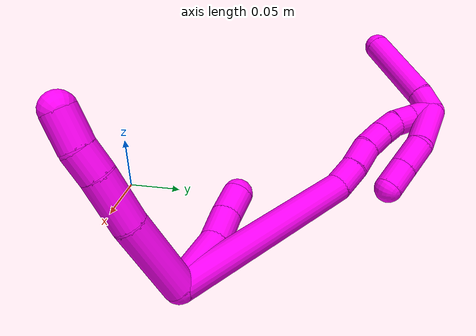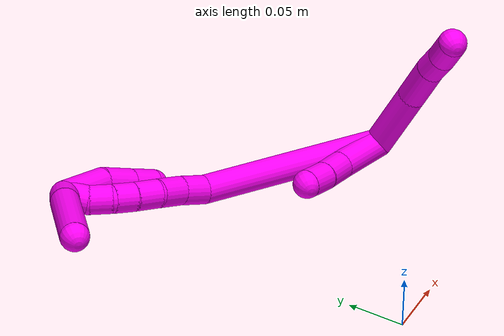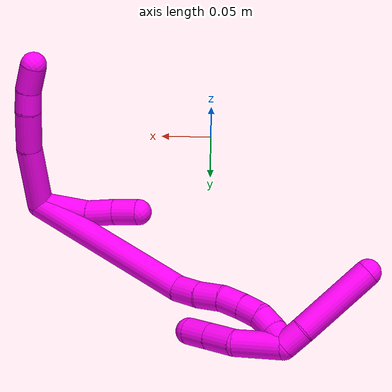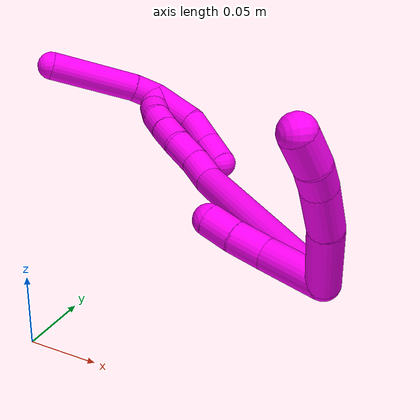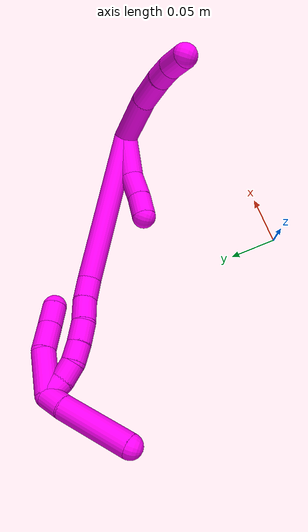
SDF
<sdf version="1.7">
 <world name="default">
  <model name="10">
   <static>0</static>
   <link name="10">
    <collision name="collision-cylinder-e_1_2_8">
     <pose>0.001923 -0.030748 -0.007248 1.80228 0.060803 0.076787</pose>
     <geometry><cylinder><radius>0.0125</radius><length>0.063299</length></cylinder></geometry>
     <surface>
      <friction><ode><mu>1.16</mu><mu2>1.16</mu2><slip1>0</slip1><slip2>0</slip2></ode></friction>
      <contact><ode><kp>1e+06</kp><kd>1</kd><max_vel>0</max_vel><min_depth>0.001</min_depth></ode></contact>
     </surface>
    </collision>
    <visual name="visual-cylinder-e_1_2_8">
     <pose>0.001923 -0.030748 -0.007248 1.80228 0.060803 0.076787</pose>
     <geometry><cylinder><radius>0.0125</radius><length>0.063299</length></cylinder></geometry>
     <material><ambient>1 0 0.964706 1</ambient></material>
    </visual>
    <collision name="collision-cylinder-e_2_8_9">
     <pose>0.003138 -0.080011 -0.021054 1.91126 -0.03603 -0.050982</pose>
     <geometry><cylinder><radius>0.0125</radius><length>0.039309</length></cylinder></geometry>
     <surface>
      <friction><ode><mu>1.16</mu><mu2>1.16</mu2><slip1>0</slip1><slip2>0</slip2></ode></friction>
      <contact><ode><kp>1e+06</kp><kd>1</kd><max_vel>0</max_vel><min_depth>0.001</min_depth></ode></contact>
     </surface>
    </collision>
    <visual name="visual-cylinder-e_2_8_9">
     <pose>0.003138 -0.080011 -0.021054 1.91126 -0.03603 -0.050982</pose>
     <geometry><cylinder><radius>0.0125</radius><length>0.039309</length></cylinder></geometry>
     <material><ambient>1 0 0.964706 1</ambient></material>
    </visual>
    <collision name="collision-cylinder-e_3_9_10">
     <pose>0.002636 -0.108078 -0.031995 2.00084 0.019524 0.030433</pose>
     <geometry><cylinder><radius>0.0125</radius><length>0.021023</length></cylinder></geometry>
     <surface>
      <friction><ode><mu>1.16</mu><mu2>1.16</mu2><slip1>0</slip1><slip2>0</slip2></ode></friction>
      <contact><ode><kp>1e+06</kp><kd>1</kd><max_vel>0</max_vel><min_depth>0.001</min_depth></ode></contact>
     </surface>
    </collision>
    <visual name="visual-cylinder-e_3_9_10">
     <pose>0.002636 -0.108078 -0.031995 2.00084 0.019524 0.030433</pose>
     <geometry><cylinder><radius>0.0125</radius><length>0.021023</length></cylinder></geometry>
     <material><ambient>1 0 0.964706 1</ambient></material>
    </visual>
    <collision name="collision-cylinder-e_4_10_6">
     <pose>0.000761 -0.128987 -0.042744 2.08181 -0.158393 -0.269327</pose>
     <geometry><cylinder><radius>0.0125</radius><length>0.026369</length></cylinder></geometry>
     <surface>
      <friction><ode><mu>1.16</mu><mu2>1.16</mu2><slip1>0</slip1><slip2>0</slip2></ode></friction>
      <contact><ode><kp>1e+06</kp><kd>1</kd><max_vel>0</max_vel><min_depth>0.001</min_depth></ode></contact>
     </surface>
    </collision>
    <visual name="visual-cylinder-e_4_10_6">
     <pose>0.000761 -0.128987 -0.042744 2.08181 -0.158393 -0.269327</pose>
     <geometry><cylinder><radius>0.0125</radius><length>0.026369</length></cylinder></geometry>
     <material><ambient>1 0 0.964706 1</ambient></material>
    </visual>
    <collision name="collision-cylinder-e_1_2_11">
     <pose>-0.020856 0.005338 -0.011556 -2.70885 -1.02282 2.39497</pose>
     <geometry><cylinder><radius>0.0125</radius><length>0.048868</length></cylinder></geometry>
     <surface>
      <friction><ode><mu>1.16</mu><mu2>1.16</mu2><slip1>0</slip1><slip2>0</slip2></ode></friction>
      <contact><ode><kp>1e+06</kp><kd>1</kd><max_vel>0</max_vel><min_depth>0.001</min_depth></ode></contact>
     </surface>
    </collision>
    <visual name="visual-cylinder-e_1_2_11">
     <pose>-0.020856 0.005338 -0.011556 -2.70885 -1.02282 2.39497</pose>
     <geometry><cylinder><radius>0.0125</radius><length>0.048868</length></cylinder></geometry>
     <material><ambient>1 0 0.964706 1</ambient></material>
    </visual>
    <collision name="collision-cylinder-e_2_11_12">
     <pose>-0.052483 0.011253 -0.03122 -3.07062 -0.924248 2.99928</pose>
     <geometry><cylinder><radius>0.0125</radius><length>0.026988</length></cylinder></geometry>
     <surface>
      <friction><ode><mu>1.16</mu><mu2>1.16</mu2><slip1>0</slip1><slip2>0</slip2></ode></friction>
      <contact><ode><kp>1e+06</kp><kd>1</kd><max_vel>0</max_vel><min_depth>0.001</min_depth></ode></contact>
     </surface>
    </collision>
    <visual name="visual-cylinder-e_2_11_12">
     <pose>-0.052483 0.011253 -0.03122 -3.07062 -0.924248 2.99928</pose>
     <geometry><cylinder><radius>0.0125</radius><length>0.026988</length></cylinder></geometry>
     <material><ambient>1 0 0.964706 1</ambient></material>
    </visual>
    <collision name="collision-cylinder-e_3_12_5">
     <pose>-0.073527 0.012193 -0.045658 -3.08423 -1.01792 3.03885</pose>
     <geometry><cylinder><radius>0.0125</radius><length>0.024145</length></cylinder></geometry>
     <surface>
      <friction><ode><mu>1.16</mu><mu2>1.16</mu2><slip1>0</slip1><slip2>0</slip2></ode></friction>
      <contact><ode><kp>1e+06</kp><kd>1</kd><max_vel>0</max_vel><min_depth>0.001</min_depth></ode></contact>
     </surface>
    </collision>
    <visual name="visual-cylinder-e_3_12_5">
     <pose>-0.073527 0.012193 -0.045658 -3.08423 -1.01792 3.03885</pose>
     <geometry><cylinder><radius>0.0125</radius><length>0.024145</length></cylinder></geometry>
     <material><ambient>1 0 0.964706 1</ambient></material>
    </visual>
    <collision name="collision-cylinder-e_1_2_13">
     <pose>-0.079172 0.024267 -0.010324 -1.97305 -1.24926 1.65702</pose>
     <geometry><cylinder><radius>0.0125</radius><length>0.166897</length></cylinder></geometry>
     <surface>
      <friction><ode><mu>1.16</mu><mu2>1.16</mu2><slip1>0</slip1><slip2>0</slip2></ode></friction>
      <contact><ode><kp>1e+06</kp><kd>1</kd><max_vel>0</max_vel><min_depth>0.001</min_depth></ode></contact>
     </surface>
    </collision>
    <visual name="visual-cylinder-e_1_2_13">
     <pose>-0.079172 0.024267 -0.010324 -1.97305 -1.24926 1.65702</pose>
     <geometry><cylinder><radius>0.0125</radius><length>0.166897</length></cylinder></geometry>
     <material><ambient>1 0 0.964706 1</ambient></material>
    </visual>
    <collision name="collision-cylinder-e_2_13_14">
     <pose>-0.170596 0.048251 -0.023075 3.02557 -1.37405 -3.00024</pose>
     <geometry><cylinder><radius>0.0125</radius><length>0.024987</length></cylinder></geometry>
     <surface>
      <friction><ode><mu>1.16</mu><mu2>1.16</mu2><slip1>0</slip1><slip2>0</slip2></ode></friction>
      <contact><ode><kp>1e+06</kp><kd>1</kd><max_vel>0</max_vel><min_depth>0.001</min_depth></ode></contact>
     </surface>
    </collision>
    <visual name="visual-cylinder-e_2_13_14">
     <pose>-0.170596 0.048251 -0.023075 3.02557 -1.37405 -3.00024</pose>
     <geometry><cylinder><radius>0.0125</radius><length>0.024987</length></cylinder></geometry>
     <material><ambient>1 0 0.964706 1</ambient></material>
    </visual>
    <collision name="collision-cylinder-e_3_14_15">
     <pose>-0.194709 0.047331 -0.029599 2.98719 -1.23435 -2.92444</pose>
     <geometry><cylinder><radius>0.0125</radius><length>0.025128</length></cylinder></geometry>
     <surface>
      <friction><ode><mu>1.16</mu><mu2>1.16</mu2><slip1>0</slip1><slip2>0</slip2></ode></friction>
      <contact><ode><kp>1e+06</kp><kd>1</kd><max_vel>0</max_vel><min_depth>0.001</min_depth></ode></contact>
     </surface>
    </collision>
    <visual name="visual-cylinder-e_3_14_15">
     <pose>-0.194709 0.047331 -0.029599 2.98719 -1.23435 -2.92444</pose>
     <geometry><cylinder><radius>0.0125</radius><length>0.025128</length></cylinder></geometry>
     <material><ambient>1 0 0.964706 1</ambient></material>
    </visual>
    <collision name="collision-cylinder-e_4_15_16">
     <pose>-0.217753 0.047867 -0.035667 -2.60393 -1.3686 2.49024</pose>
     <geometry><cylinder><radius>0.0125</radius><length>0.022834</length></cylinder></geometry>
     <surface>
      <friction><ode><mu>1.16</mu><mu2>1.16</mu2><slip1>0</slip1><slip2>0</slip2></ode></friction>
      <contact><ode><kp>1e+06</kp><kd>1</kd><max_vel>0</max_vel><min_depth>0.001</min_depth></ode></contact>
     </surface>
    </collision>
    <visual name="visual-cylinder-e_4_15_16">
     <pose>-0.217753 0.047867 -0.035667 -2.60393 -1.3686 2.49024</pose>
     <geometry><cylinder><radius>0.0125</radius><length>0.022834</length></cylinder></geometry>
     <material><ambient>1 0 0.964706 1</ambient></material>
    </visual>
    <collision name="collision-cylinder-e_5_16_17">
     <pose>-0.238865 0.050223 -0.038571 -2.23978 -1.42016 2.11573</pose>
     <geometry><cylinder><radius>0.0125</radius><length>0.020083</length></cylinder></geometry>
     <surface>
      <friction><ode><mu>1.16</mu><mu2>1.16</mu2><slip1>0</slip1><slip2>0</slip2></ode></friction>
      <contact><ode><kp>1e+06</kp><kd>1</kd><max_vel>0</max_vel><min_depth>0.001</min_depth></ode></contact>
     </surface>
    </collision>
    <visual name="visual-cylinder-e_5_16_17">
     <pose>-0.238865 0.050223 -0.038571 -2.23978 -1.42016 2.11573</pose>
     <geometry><cylinder><radius>0.0125</radius><length>0.020083</length></cylinder></geometry>
     <material><ambient>1 0 0.964706 1</ambient></material>
    </visual>
    <collision name="collision-cylinder-e_6_17_18">
     <pose>-0.258281 0.054125 -0.037776 -1.00435 -1.24333 0.749623</pose>
     <geometry><cylinder><radius>0.0125</radius><length>0.020041</length></cylinder></geometry>
     <surface>
      <friction><ode><mu>1.16</mu><mu2>1.16</mu2><slip1>0</slip1><slip2>0</slip2></ode></friction>
      <contact><ode><kp>1e+06</kp><kd>1</kd><max_vel>0</max_vel><min_depth>0.001</min_depth></ode></contact>
     </surface>
    </collision>
    <visual name="visual-cylinder-e_6_17_18">
     <pose>-0.258281 0.054125 -0.037776 -1.00435 -1.24333 0.749623</pose>
     <geometry><cylinder><radius>0.0125</radius><length>0.020041</length></cylinder></geometry>
     <material><ambient>1 0 0.964706 1</ambient></material>
    </visual>
    <collision name="collision-cylinder-e_7_18_1">
     <pose>-0.276945 0.057955 -0.032191 -0.280395 -1.15862 0.184119</pose>
     <geometry><cylinder><radius>0.0125</radius><length>0.02003</length></cylinder></geometry>
     <surface>
      <friction><ode><mu>1.16</mu><mu2>1.16</mu2><slip1>0</slip1><slip2>0</slip2></ode></friction>
      <contact><ode><kp>1e+06</kp><kd>1</kd><max_vel>0</max_vel><min_depth>0.001</min_depth></ode></contact>
     </surface>
    </collision>
    <visual name="visual-cylinder-e_7_18_1">
     <pose>-0.276945 0.057955 -0.032191 -0.280395 -1.15862 0.184119</pose>
     <geometry><cylinder><radius>0.0125</radius><length>0.02003</length></cylinder></geometry>
     <material><ambient>1 0 0.964706 1</ambient></material>
    </visual>
    <collision name="collision-cylinder-e_1_1_19">
     <pose>-0.265695 0.058718 -0.017355 0.031643 1.07733 0.018911</pose>
     <geometry><cylinder><radius>0.0125</radius><length>0.046385</length></cylinder></geometry>
     <surface>
      <friction><ode><mu>1.16</mu><mu2>1.16</mu2><slip1>0</slip1><slip2>0</slip2></ode></friction>
      <contact><ode><kp>1e+06</kp><kd>1</kd><max_vel>0</max_vel><min_depth>0.001</min_depth></ode></contact>
     </surface>
    </collision>
    <visual name="visual-cylinder-e_1_1_19">
     <pose>-0.265695 0.058718 -0.017355 0.031643 1.07733 0.018911</pose>
     <geometry><cylinder><radius>0.0125</radius><length>0.046385</length></cylinder></geometry>
     <material><ambient>1 0 0.964706 1</ambient></material>
    </visual>
    <collision name="collision-cylinder-e_2_19_20">
     <pose>-0.231193 0.059921 -0.003643 -0.516445 1.35121 -0.41718</pose>
     <geometry><cylinder><radius>0.0125</radius><length>0.028847</length></cylinder></geometry>
     <surface>
      <friction><ode><mu>1.16</mu><mu2>1.16</mu2><slip1>0</slip1><slip2>0</slip2></ode></friction>
      <contact><ode><kp>1e+06</kp><kd>1</kd><max_vel>0</max_vel><min_depth>0.001</min_depth></ode></contact>
     </surface>
    </collision>
    <visual name="visual-cylinder-e_2_19_20">
     <pose>-0.231193 0.059921 -0.003643 -0.516445 1.35121 -0.41718</pose>
     <geometry><cylinder><radius>0.0125</radius><length>0.028847</length></cylinder></geometry>
     <material><ambient>1 0 0.964706 1</ambient></material>
    </visual>
    <collision name="collision-cylinder-e_3_20_4">
     <pose>-0.205041 0.06276 0.001523 -0.486572 1.34664 -0.390913</pose>
     <geometry><cylinder><radius>0.0125</radius><length>0.024768</length></cylinder></geometry>
     <surface>
      <friction><ode><mu>1.16</mu><mu2>1.16</mu2><slip1>0</slip1><slip2>0</slip2></ode></friction>
      <contact><ode><kp>1e+06</kp><kd>1</kd><max_vel>0</max_vel><min_depth>0.001</min_depth></ode></contact>
     </surface>
    </collision>
    <visual name="visual-cylinder-e_3_20_4">
     <pose>-0.205041 0.06276 0.001523 -0.486572 1.34664 -0.390913</pose>
     <geometry><cylinder><radius>0.0125</radius><length>0.024768</length></cylinder></geometry>
     <material><ambient>1 0 0.964706 1</ambient></material>
    </visual>
    <collision name="collision-cylinder-e_1_1_21">
     <pose>-0.289927 0.055355 -0.038154 2.78032 -0.347901 -1.53229</pose>
     <geometry><cylinder><radius>0.0125</radius><length>0.022329</length></cylinder></geometry>
     <surface>
      <friction><ode><mu>1.16</mu><mu2>1.16</mu2><slip1>0</slip1><slip2>0</slip2></ode></friction>
      <contact><ode><kp>1e+06</kp><kd>1</kd><max_vel>0</max_vel><min_depth>0.001</min_depth></ode></contact>
     </surface>
    </collision>
    <visual name="visual-cylinder-e_1_1_21">
     <pose>-0.289927 0.055355 -0.038154 2.78032 -0.347901 -1.53229</pose>
     <geometry><cylinder><radius>0.0125</radius><length>0.022329</length></cylinder></geometry>
     <material><ambient>1 0 0.964706 1</ambient></material>
    </visual>
    <collision name="collision-cylinder-e_2_21_3">
     <pose>-0.303081 0.041975 -0.084404 2.88214 -0.243101 -1.50504</pose>
     <geometry><cylinder><radius>0.0125</radius><length>0.077671</length></cylinder></geometry>
     <surface>
      <friction><ode><mu>1.16</mu><mu2>1.16</mu2><slip1>0</slip1><slip2>0</slip2></ode></friction>
      <contact><ode><kp>1e+06</kp><kd>1</kd><max_vel>0</max_vel><min_depth>0.001</min_depth></ode></contact>
     </surface>
    </collision>
    <visual name="visual-cylinder-e_2_21_3">
     <pose>-0.303081 0.041975 -0.084404 2.88214 -0.243101 -1.50504</pose>
     <geometry><cylinder><radius>0.0125</radius><length>0.077671</length></cylinder></geometry>
     <material><ambient>1 0 0.964706 1</ambient></material>
    </visual>
    <collision name="collision-sphere-3">
     <pose>-0.31243 0.032305 -0.120836 0 -0 0</pose>
     <geometry><sphere><radius>0.0125</radius></sphere></geometry>
     <surface>
      <friction><ode><mu>1.16</mu><mu2>1.16</mu2><slip1>0</slip1><slip2>0</slip2></ode></friction>
      <contact><ode><kp>1e+06</kp><kd>1</kd><max_vel>0</max_vel><min_depth>0.001</min_depth></ode></contact>
     </surface>
    </collision>
    <visual name="visual-sphere-3">
     <pose>-0.31243 0.032305 -0.120836 0 -0 0</pose>
     <geometry><sphere><radius>0.0125</radius></sphere></geometry>
     <material><ambient>1 0 0.964706 1</ambient></material>
    </visual>
    <collision name="collision-sphere-21">
     <pose>-0.293733 0.051646 -0.047972 0 -0 0</pose>
     <geometry><sphere><radius>0.0125</radius></sphere></geometry>
     <surface>
      <friction><ode><mu>1.16</mu><mu2>1.16</mu2><slip1>0</slip1><slip2>0</slip2></ode></friction>
      <contact><ode><kp>1e+06</kp><kd>1</kd><max_vel>0</max_vel><min_depth>0.001</min_depth></ode></contact>
     </surface>
    </collision>
    <visual name="visual-sphere-21">
     <pose>-0.293733 0.051646 -0.047972 0 -0 0</pose>
     <geometry><sphere><radius>0.0125</radius></sphere></geometry>
     <material><ambient>1 0 0.964706 1</ambient></material>
    </visual>
    <collision name="collision-sphere-4">
     <pose>-0.192967 0.064047 0.003956 0 -0 0</pose>
     <geometry><sphere><radius>0.0125</radius></sphere></geometry>
     <surface>
      <friction><ode><mu>1.16</mu><mu2>1.16</mu2><slip1>0</slip1><slip2>0</slip2></ode></friction>
      <contact><ode><kp>1e+06</kp><kd>1</kd><max_vel>0</max_vel><min_depth>0.001</min_depth></ode></contact>
     </surface>
    </collision>
    <visual name="visual-sphere-4">
     <pose>-0.192967 0.064047 0.003956 0 -0 0</pose>
     <geometry><sphere><radius>0.0125</radius></sphere></geometry>
     <material><ambient>1 0 0.964706 1</ambient></material>
    </visual>
    <collision name="collision-sphere-20">
     <pose>-0.217116 0.061473 -0.000911 0 -0 0</pose>
     <geometry><sphere><radius>0.0125</radius></sphere></geometry>
     <surface>
      <friction><ode><mu>1.16</mu><mu2>1.16</mu2><slip1>0</slip1><slip2>0</slip2></ode></friction>
      <contact><ode><kp>1e+06</kp><kd>1</kd><max_vel>0</max_vel><min_depth>0.001</min_depth></ode></contact>
     </surface>
    </collision>
    <visual name="visual-sphere-20">
     <pose>-0.217116 0.061473 -0.000911 0 -0 0</pose>
     <geometry><sphere><radius>0.0125</radius></sphere></geometry>
     <material><ambient>1 0 0.964706 1</ambient></material>
    </visual>
    <collision name="collision-sphere-11">
     <pose>-0.041712 0.010676 -0.023111 0 -0 0</pose>
     <geometry><sphere><radius>0.0125</radius></sphere></geometry>
     <surface>
      <friction><ode><mu>1.16</mu><mu2>1.16</mu2><slip1>0</slip1><slip2>0</slip2></ode></friction>
      <contact><ode><kp>1e+06</kp><kd>1</kd><max_vel>0</max_vel><min_depth>0.001</min_depth></ode></contact>
     </surface>
    </collision>
    <visual name="visual-sphere-11">
     <pose>-0.041712 0.010676 -0.023111 0 -0 0</pose>
     <geometry><sphere><radius>0.0125</radius></sphere></geometry>
     <material><ambient>1 0 0.964706 1</ambient></material>
    </visual>
    <collision name="collision-sphere-6">
     <pose>-0.001318 -0.140343 -0.049111 0 -0 0</pose>
     <geometry><sphere><radius>0.0125</radius></sphere></geometry>
     <surface>
      <friction><ode><mu>1.16</mu><mu2>1.16</mu2><slip1>0</slip1><slip2>0</slip2></ode></friction>
      <contact><ode><kp>1e+06</kp><kd>1</kd><max_vel>0</max_vel><min_depth>0.001</min_depth></ode></contact>
     </surface>
    </collision>
    <visual name="visual-sphere-6">
     <pose>-0.001318 -0.140343 -0.049111 0 -0 0</pose>
     <geometry><sphere><radius>0.0125</radius></sphere></geometry>
     <material><ambient>1 0 0.964706 1</ambient></material>
    </visual>
    <collision name="collision-sphere-10">
     <pose>0.002841 -0.11763 -0.036376 0 -0 0</pose>
     <geometry><sphere><radius>0.0125</radius></sphere></geometry>
     <surface>
      <friction><ode><mu>1.16</mu><mu2>1.16</mu2><slip1>0</slip1><slip2>0</slip2></ode></friction>
      <contact><ode><kp>1e+06</kp><kd>1</kd><max_vel>0</max_vel><min_depth>0.001</min_depth></ode></contact>
     </surface>
    </collision>
    <visual name="visual-sphere-10">
     <pose>0.002841 -0.11763 -0.036376 0 -0 0</pose>
     <geometry><sphere><radius>0.0125</radius></sphere></geometry>
     <material><ambient>1 0 0.964706 1</ambient></material>
    </visual>
    <collision name="collision-sphere-9">
     <pose>0.00243 -0.098525 -0.027613 0 -0 0</pose>
     <geometry><sphere><radius>0.0125</radius></sphere></geometry>
     <surface>
      <friction><ode><mu>1.16</mu><mu2>1.16</mu2><slip1>0</slip1><slip2>0</slip2></ode></friction>
      <contact><ode><kp>1e+06</kp><kd>1</kd><max_vel>0</max_vel><min_depth>0.001</min_depth></ode></contact>
     </surface>
    </collision>
    <visual name="visual-sphere-9">
     <pose>0.00243 -0.098525 -0.027613 0 -0 0</pose>
     <geometry><sphere><radius>0.0125</radius></sphere></geometry>
     <material><ambient>1 0 0.964706 1</ambient></material>
    </visual>
    <collision name="collision-sphere-2">
     <geometry><sphere><radius>0.0125</radius></sphere></geometry>
     <surface>
      <friction><ode><mu>1.16</mu><mu2>1.16</mu2><slip1>0</slip1><slip2>0</slip2></ode></friction>
      <contact><ode><kp>1e+06</kp><kd>1</kd><max_vel>0</max_vel><min_depth>0.001</min_depth></ode></contact>
     </surface>
    </collision>
    <visual name="visual-sphere-2">
     <geometry><sphere><radius>0.0125</radius></sphere></geometry>
     <material><ambient>1 0 0.964706 1</ambient></material>
    </visual>
    <collision name="collision-sphere-19">
     <pose>-0.24527 0.05837 -0.006375 0 -0 0</pose>
     <geometry><sphere><radius>0.0125</radius></sphere></geometry>
     <surface>
      <friction><ode><mu>1.16</mu><mu2>1.16</mu2><slip1>0</slip1><slip2>0</slip2></ode></friction>
      <contact><ode><kp>1e+06</kp><kd>1</kd><max_vel>0</max_vel><min_depth>0.001</min_depth></ode></contact>
     </surface>
    </collision>
    <visual name="visual-sphere-19">
     <pose>-0.24527 0.05837 -0.006375 0 -0 0</pose>
     <geometry><sphere><radius>0.0125</radius></sphere></geometry>
     <material><ambient>1 0 0.964706 1</ambient></material>
    </visual>
    <collision name="collision-sphere-8">
     <pose>0.003846 -0.061496 -0.014496 0 -0 0</pose>
     <geometry><sphere><radius>0.0125</radius></sphere></geometry>
     <surface>
      <friction><ode><mu>1.16</mu><mu2>1.16</mu2><slip1>0</slip1><slip2>0</slip2></ode></friction>
      <contact><ode><kp>1e+06</kp><kd>1</kd><max_vel>0</max_vel><min_depth>0.001</min_depth></ode></contact>
     </surface>
    </collision>
    <visual name="visual-sphere-8">
     <pose>0.003846 -0.061496 -0.014496 0 -0 0</pose>
     <geometry><sphere><radius>0.0125</radius></sphere></geometry>
     <material><ambient>1 0 0.964706 1</ambient></material>
    </visual>
    <collision name="collision-sphere-12">
     <pose>-0.063253 0.011829 -0.039329 0 -0 0</pose>
     <geometry><sphere><radius>0.0125</radius></sphere></geometry>
     <surface>
      <friction><ode><mu>1.16</mu><mu2>1.16</mu2><slip1>0</slip1><slip2>0</slip2></ode></friction>
      <contact><ode><kp>1e+06</kp><kd>1</kd><max_vel>0</max_vel><min_depth>0.001</min_depth></ode></contact>
     </surface>
    </collision>
    <visual name="visual-sphere-12">
     <pose>-0.063253 0.011829 -0.039329 0 -0 0</pose>
     <geometry><sphere><radius>0.0125</radius></sphere></geometry>
     <material><ambient>1 0 0.964706 1</ambient></material>
    </visual>
    <collision name="collision-sphere-5">
     <pose>-0.083801 0.012556 -0.051987 0 -0 0</pose>
     <geometry><sphere><radius>0.0125</radius></sphere></geometry>
     <surface>
      <friction><ode><mu>1.16</mu><mu2>1.16</mu2><slip1>0</slip1><slip2>0</slip2></ode></friction>
      <contact><ode><kp>1e+06</kp><kd>1</kd><max_vel>0</max_vel><min_depth>0.001</min_depth></ode></contact>
     </surface>
    </collision>
    <visual name="visual-sphere-5">
     <pose>-0.083801 0.012556 -0.051987 0 -0 0</pose>
     <geometry><sphere><radius>0.0125</radius></sphere></geometry>
     <material><ambient>1 0 0.964706 1</ambient></material>
    </visual>
    <collision name="collision-sphere-13">
     <pose>-0.158344 0.048534 -0.020649 0 -0 0</pose>
     <geometry><sphere><radius>0.0125</radius></sphere></geometry>
     <surface>
      <friction><ode><mu>1.16</mu><mu2>1.16</mu2><slip1>0</slip1><slip2>0</slip2></ode></friction>
      <contact><ode><kp>1e+06</kp><kd>1</kd><max_vel>0</max_vel><min_depth>0.001</min_depth></ode></contact>
     </surface>
    </collision>
    <visual name="visual-sphere-13">
     <pose>-0.158344 0.048534 -0.020649 0 -0 0</pose>
     <geometry><sphere><radius>0.0125</radius></sphere></geometry>
     <material><ambient>1 0 0.964706 1</ambient></material>
    </visual>
    <collision name="collision-sphere-14">
     <pose>-0.182849 0.047969 -0.025501 0 -0 0</pose>
     <geometry><sphere><radius>0.0125</radius></sphere></geometry>
     <surface>
      <friction><ode><mu>1.16</mu><mu2>1.16</mu2><slip1>0</slip1><slip2>0</slip2></ode></friction>
      <contact><ode><kp>1e+06</kp><kd>1</kd><max_vel>0</max_vel><min_depth>0.001</min_depth></ode></contact>
     </surface>
    </collision>
    <visual name="visual-sphere-14">
     <pose>-0.182849 0.047969 -0.025501 0 -0 0</pose>
     <geometry><sphere><radius>0.0125</radius></sphere></geometry>
     <material><ambient>1 0 0.964706 1</ambient></material>
    </visual>
    <collision name="collision-sphere-15">
     <pose>-0.206568 0.046693 -0.033698 0 -0 0</pose>
     <geometry><sphere><radius>0.0125</radius></sphere></geometry>
     <surface>
      <friction><ode><mu>1.16</mu><mu2>1.16</mu2><slip1>0</slip1><slip2>0</slip2></ode></friction>
      <contact><ode><kp>1e+06</kp><kd>1</kd><max_vel>0</max_vel><min_depth>0.001</min_depth></ode></contact>
     </surface>
    </collision>
    <visual name="visual-sphere-15">
     <pose>-0.206568 0.046693 -0.033698 0 -0 0</pose>
     <geometry><sphere><radius>0.0125</radius></sphere></geometry>
     <material><ambient>1 0 0.964706 1</ambient></material>
    </visual>
    <collision name="collision-sphere-16">
     <pose>-0.228937 0.049041 -0.037636 0 -0 0</pose>
     <geometry><sphere><radius>0.0125</radius></sphere></geometry>
     <surface>
      <friction><ode><mu>1.16</mu><mu2>1.16</mu2><slip1>0</slip1><slip2>0</slip2></ode></friction>
      <contact><ode><kp>1e+06</kp><kd>1</kd><max_vel>0</max_vel><min_depth>0.001</min_depth></ode></contact>
     </surface>
    </collision>
    <visual name="visual-sphere-16">
     <pose>-0.228937 0.049041 -0.037636 0 -0 0</pose>
     <geometry><sphere><radius>0.0125</radius></sphere></geometry>
     <material><ambient>1 0 0.964706 1</ambient></material>
    </visual>
    <collision name="collision-sphere-17">
     <pose>-0.248793 0.051405 -0.039505 0 -0 0</pose>
     <geometry><sphere><radius>0.0125</radius></sphere></geometry>
     <surface>
      <friction><ode><mu>1.16</mu><mu2>1.16</mu2><slip1>0</slip1><slip2>0</slip2></ode></friction>
      <contact><ode><kp>1e+06</kp><kd>1</kd><max_vel>0</max_vel><min_depth>0.001</min_depth></ode></contact>
     </surface>
    </collision>
    <visual name="visual-sphere-17">
     <pose>-0.248793 0.051405 -0.039505 0 -0 0</pose>
     <geometry><sphere><radius>0.0125</radius></sphere></geometry>
     <material><ambient>1 0 0.964706 1</ambient></material>
    </visual>
    <collision name="collision-sphere-18">
     <pose>-0.267769 0.056845 -0.036046 0 -0 0</pose>
     <geometry><sphere><radius>0.0125</radius></sphere></geometry>
     <surface>
      <friction><ode><mu>1.16</mu><mu2>1.16</mu2><slip1>0</slip1><slip2>0</slip2></ode></friction>
      <contact><ode><kp>1e+06</kp><kd>1</kd><max_vel>0</max_vel><min_depth>0.001</min_depth></ode></contact>
     </surface>
    </collision>
    <visual name="visual-sphere-18">
     <pose>-0.267769 0.056845 -0.036046 0 -0 0</pose>
     <geometry><sphere><radius>0.0125</radius></sphere></geometry>
     <material><ambient>1 0 0.964706 1</ambient></material>
    </visual>
    <collision name="collision-sphere-1">
     <pose>-0.286121 0.059065 -0.028335 0 -0 0</pose>
     <geometry><sphere><radius>0.0125</radius></sphere></geometry>
     <surface>
      <friction><ode><mu>1.16</mu><mu2>1.16</mu2><slip1>0</slip1><slip2>0</slip2></ode></friction>
      <contact><ode><kp>1e+06</kp><kd>1</kd><max_vel>0</max_vel><min_depth>0.001</min_depth></ode></contact>
     </surface>
    </collision>
    <visual name="visual-sphere-1">
     <pose>-0.286121 0.059065 -0.028335 0 -0 0</pose>
     <geometry><sphere><radius>0.0125</radius></sphere></geometry>
     <material><ambient>1 0 0.964706 1</ambient></material>
    </visual>
    <inertial>
     <pose>-0.134451 0.015186 -0.026547 0 -0 0</pose>
     <mass>0.75</mass>
     <inertia>
      <ixx>8.8e-05</ixx>
      <ixy>0</ixy>
      <ixz>0</ixz>
      <iyy>0.000468</iyy>
      <iyz>0</iyz>
      <izz>0.000304</izz>
     </inertia>
    </inertial>
   </link>
   <pose>0.16437 0.109255 0.03385 -1.58295 0.337512 -0.748705</pose>
  </model>
 </world>
</sdf>
